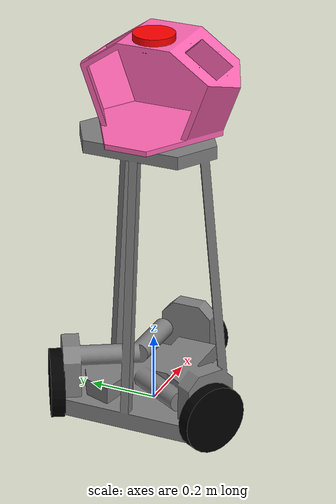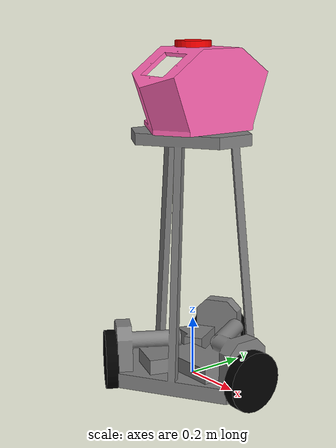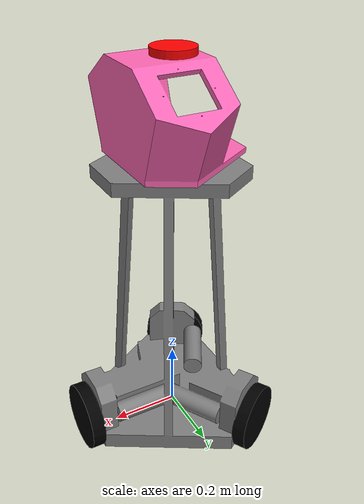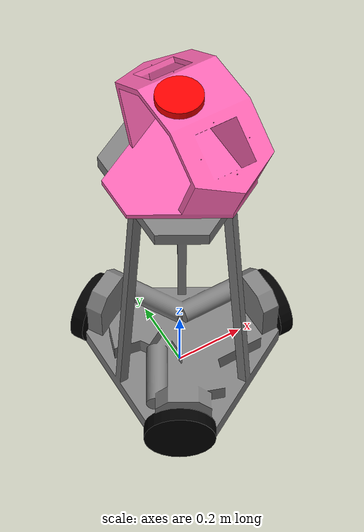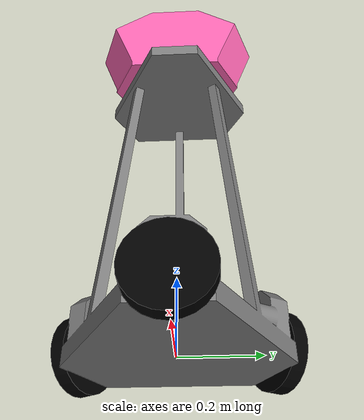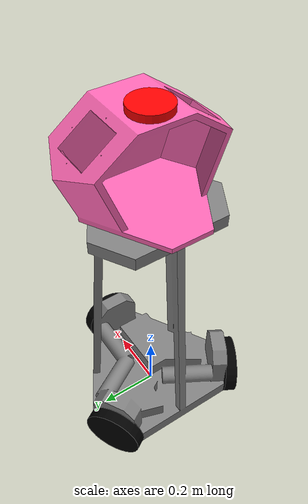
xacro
<?xml version ="1.0"?>
<robot name="my_robot" xmlns:xacro="http://www.ros.org/wiki/xacro">
    <xacro:property name = "wheel_radius" value = "0.1"/>
    <xacro:property name = "wheel_length" value = "0.04"/>
    <xacro:property name = "wheel_height" value = "0.064"/>

    <xacro:include filename="common_properties.xacro"/>

    <link name="base_footprint"/>

    <link name="base_robot">
        <visual>
            <origin xyz="0 0 0" rpy = "0 0 ${pi/2}"/>
            <geometry>
                <mesh filename="package://my_robot_description/meshes/robot_base.stl" scale="0.001 0.001 0.001"/>
            </geometry>
            <material name="grey"/>
        </visual>
        <inertial>
            <origin xyz="0 0 0" rpy="0 0 0"/>
            <mass value="1.0"/>
            <inertia ixx="0.01" ixy="0.0" ixz="0.0"
                    iyy="0.01" iyz="0.0"
                    izz="0.01"/>
        </inertial>
    </link>

    <joint name="base_to_footprint" type="fixed">
        <parent link="base_footprint"/>
        <child link="base_robot"/>
        <origin xyz="0 0 0" rpy="0 0 0"/>
    </joint>

    <link name="upper_body">
        <visual>
            <origin xyz="0 0 0" rpy ="0 0 0.5216"/>
            <geometry>
                <mesh filename="package://my_robot_description/meshes/upper_body.stl" scale="0.001 0.001 0.001"/>
            </geometry>
            <material name="pink"/>
        </visual>
        <origin xyz="0 0 0" rpy="0 0 5216"/>
        <mass value="36.91"/>
        <inertial>
        <origin xyz="0 0 0" rpy="0 0 0"/>
        <mass value="1.0"/>
        <inertia ixx="0.01" ixy="0.0" ixz="0.0"
                iyy="0.01" iyz="0.0"
                izz="0.01"/>
        </inertial>
    </link>

    <joint name="upper_body_to_base_joint" type="revolute">
        <parent link="base_robot"/>
        <child link="upper_body"/>
        <origin xyz="0 0 0.85" rpy="0 0 0"/>
        <axis xyz="0 0 1"/>
        <limit lower="${-3*pi/8}" upper="${3*pi/8}" effort="100" velocity="1"/>
    </joint>

    <xacro:macro name="wheel_link" params="prefix rpy">
        <link name="${prefix}_wheel_link">
            <visual>
                <geometry>
                    <cylinder radius="${wheel_radius}" length="${wheel_length}"/>
                </geometry>
                <origin xyz="0 0 0" rpy="${rpy}"/>
                <material name="black"/>
            </visual>
            <collision>
                <origin xyz="0 0 0" rpy="${rpy}"/>
                <geometry>
                    <sphere radius="${wheel_radius}"/>
                </geometry>
            </collision>
            <xacro:cylinder_inertia m="0.45" r="${wheel_radius}" l="${wheel_length}"
                                    o_xyz="0 0 0" o_rpy="${rpy}"/>
        </link>
    </xacro:macro>
    <xacro:wheel_link prefix="front" rpy="${pi / 2.0} 0 ${pi / 2.0}"/>
    <xacro:wheel_link prefix="left" rpy="${pi / 2.0} 0 ${pi / 6.0}"/>
    <xacro:wheel_link prefix="right" rpy="${pi / 2.0} 0 ${-pi / 6.0}"/>

    <xacro:macro name="wheel_joint" params="prefix origin_x origin_y axis">
        <joint name="base_${prefix}_wheel_joint" type="continuous">
            <parent link="base_robot"/>
            <child link="${prefix}_wheel_link"/>
            <axis xyz="${axis}"/>
            <origin xyz="${origin_x} ${origin_y} ${wheel_height}" rpy="0 0 0"/>
        </joint>
    </xacro:macro>
    <xacro:wheel_joint prefix="front" origin_x="${wheel_length/2.0+0.279}"
                       origin_y="0" axis="1 0 0"/>
    <xacro:wheel_joint prefix="left" origin_x="${-0.127-(wheel_length/2.0)*sin(pi/3)}"
                       origin_y="${0.235+(wheel_length/2.0)*cos(pi/3)}"
                       axis="${-sin(pi/6)} ${cos(pi/6)} 0"/>
    <xacro:wheel_joint prefix="right" origin_x="${-0.127-(wheel_length/2.0)*sin(pi/3)}"
                       origin_y="${-0.235-(wheel_length/2.0)*cos(pi/3)}"
                       axis="${sin(pi/6)} ${cos(pi/6)} 0"/>

    <link name="lidar">
        <visual>
            <geometry>
                <cylinder radius="0.06" length="0.04"/>
            </geometry>
            <material name="red"/>
        </visual>
        <xacro:cylinder_inertia m="0.11" r="0.05" l="0.04"
                                o_xyz="0 0 0" o_rpy="0 0 0"/>
    </link>
    <joint name="lidar_to_upper_body_joint" type="fixed">
        <parent link="upper_body"/>
        <child link="lidar"/>
        <origin xyz="0 0 0.265" rpy="0 0 0"/>
    </joint>
</robot>

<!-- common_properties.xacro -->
<robot xmlns:xacro="http://www.ros.org/wiki/xacro">

  <!-- Materials -->
  <material name="green">
    <color rgba="0 0.5 0 1"/>
  </material>

  <material name="pink">
    <color rgba="1 0.4 0.7 1"/>
  </material>

  <material name="grey">
    <color rgba="0.5 0.5 0.5 1"/>
  </material>

  <material name="black">
    <color rgba="0 0 0 1"/>
  </material>

  <material name="red">
    <color rgba="1 0 0 1"/>
  </material>

  <!-- Box inertia macro -->
  <xacro:macro name="box_inertia" params="m x y z o_xyz o_rpy">
    <inertial>
      <mass value="${m}"/>
      <origin xyz="${o_xyz}" rpy="${o_rpy}"/>
      <inertia
        ixx="${(m/12)*(y*y + z*z)}" ixy="0" ixz="0"
        iyy="${(m/12)*(x*x + z*z)}" iyz="0"
        izz="${(m/12)*(y*y + x*x)}"/>
    </inertial>
  </xacro:macro>

  <!-- Cylinder inertia macro -->
  <xacro:macro name="cylinder_inertia" params="m r l o_xyz o_rpy">
    <inertial>
      <mass value="${m}"/>
      <origin xyz="${o_xyz}" rpy="${o_rpy}"/>
      <inertia
        ixx="${(m/12)*(3*r*r + l*l)}" ixy="0" ixz="0"
        iyy="${(m/12)*(3*r*r + l*l)}" iyz="0"
        izz="${(m/2)*(r*r)}"/>
    </inertial>
  </xacro:macro>

</robot>
